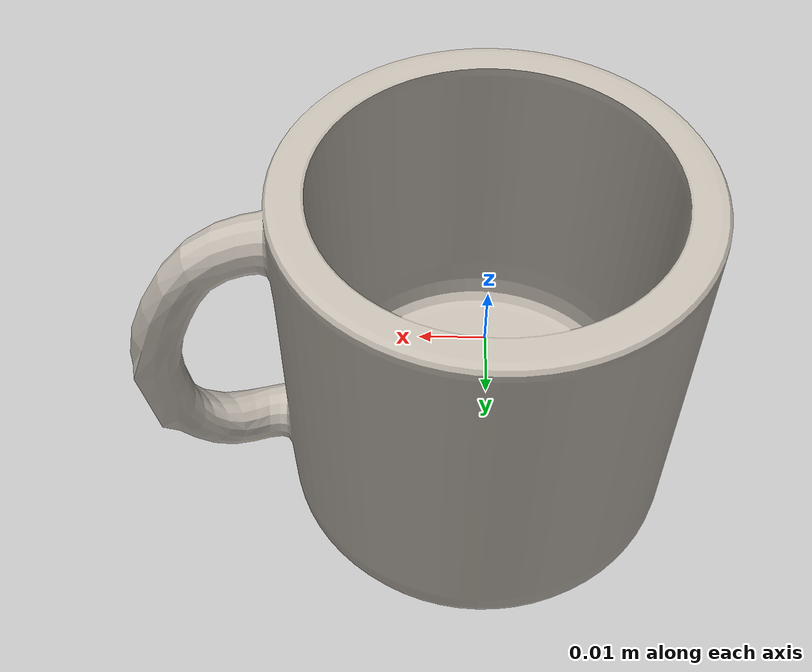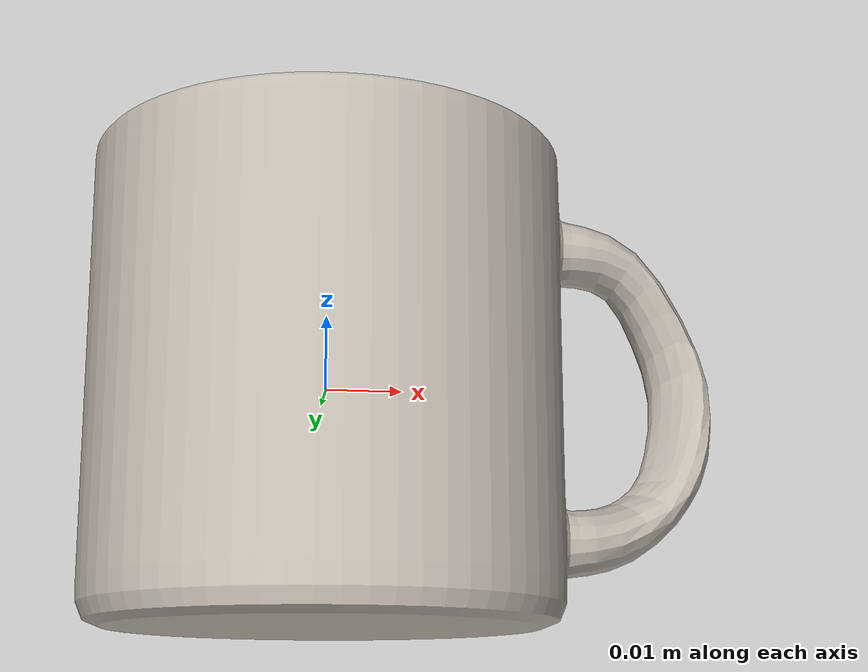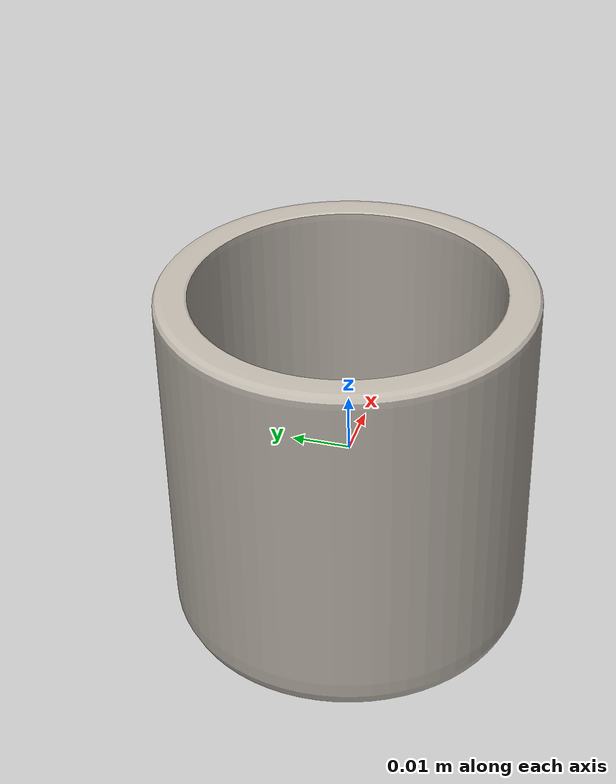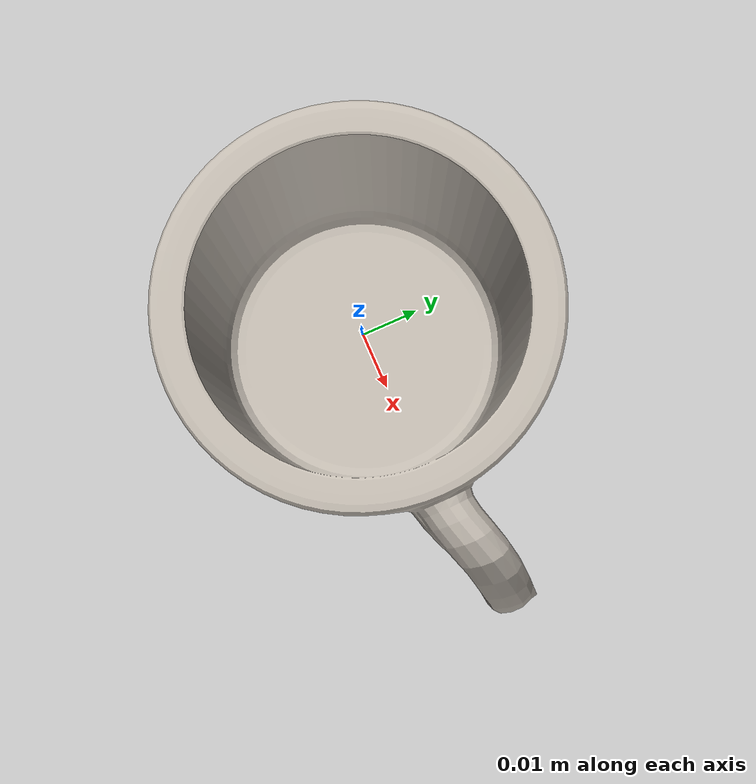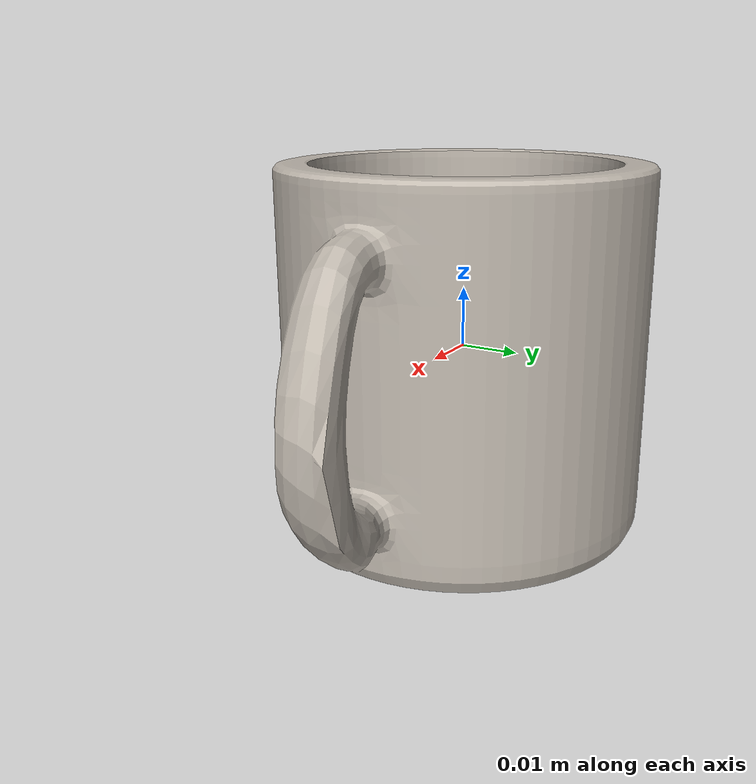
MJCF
<mujoco model="cup1">
  <asset>
    <mesh file="meshes/cup1.stl" name="cup1_mesh" scale="0.9 0.9 0.9"/>
    <texture file="../textures/ceramic.png" name="tex-ceramic"/>
    <material name="ceramic" reflectance="0.5" texrepeat="1 1" texture="tex-ceramic" texuniform="true"/>
  </asset>
  <worldbody>
    <body>
      <body name="object">
        <geom pos="0 0 0" mesh="cup1_mesh" type="mesh" solimp="0.998 0.998 0.001" solref="0.001 1" density="100" friction="0.95 0.3 0.1" material="ceramic" group="0" condim="3"/>
      </body>
      <site rgba="0 0 0 0" size="0.005" pos="0 0 -0.085" name="bottom_site"/>
      <site rgba="0 0 0 0" size="0.005" pos="0 0 0.075" name="top_site"/>
      <site rgba="0 0 0 0" size="0.005" pos="0.025 0.025 0" name="horizontal_radius_site"/>
    </body>
  </worldbody>
</mujoco>
